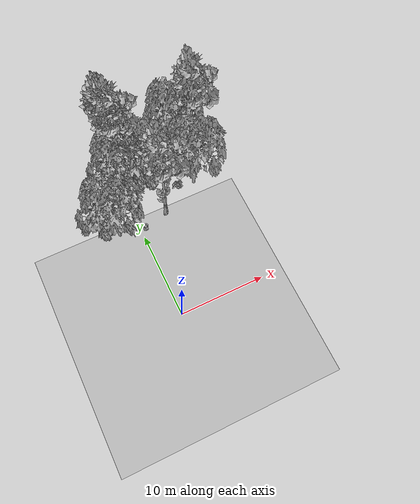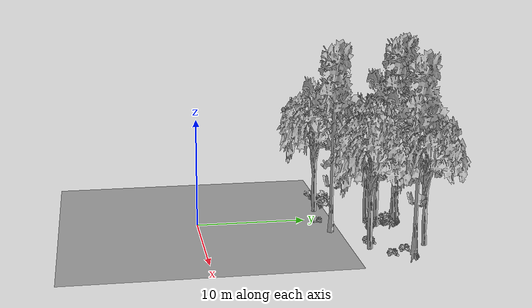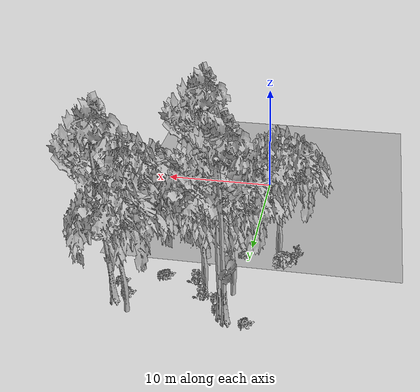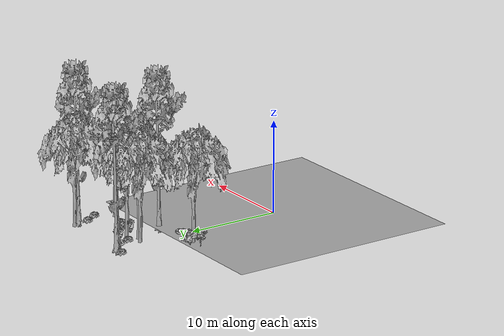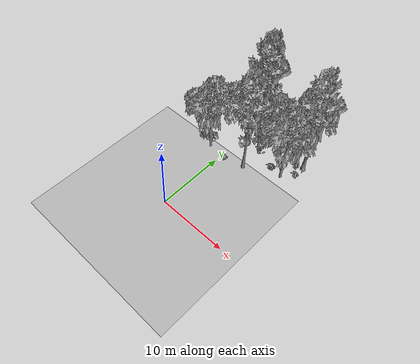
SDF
<sdf version="1.7">
 <world name="default">
  <model name="ground_plane">
   <static>1</static>
   <link name="link">
    <collision name="collision">
     <pose>-50 0 0 0 -0 0</pose>
     <geometry><plane><normal>0 0 1</normal><size>80 80</size></plane></geometry>
     <surface><contact><ode><min_depth>0.01</min_depth><max_vel>0</max_vel></ode></contact></surface>
    </collision>
    <visual name="grass">
     <cast_shadows>0</cast_shadows>
     <geometry>
      <mesh>
       <scale>0.46714285714285714 0.46714285714285714 0.1</scale>
       <uri>file://grass_plane/meshes/grass_plane.dae</uri>
      </mesh>
     </geometry>
    </visual>
   </link>
  </model>
  <model name="Tree 93">
   <static>1</static>
   <pose>1.0366560143027783 18.30291396110657 0 1.57079 -0 0</pose>
   <link name="link">
    <collision name="collision">
     <geometry><mesh><scale>3.5 5 3.5</scale><uri>model://tree_9/meshes/tree_9.obj</uri></mesh></geometry>
    </collision>
    <visual name="visual">
     <geometry><mesh><scale>3.5 5 3.5</scale><uri>model://tree_9/meshes/tree_9.obj</uri></mesh></geometry>
    </visual>
   </link>
  </model>
  <model name="Tree 205">
   <static>1</static>
   <pose>7.994420799059 19.045777521899446 0 1.57079 -0 0</pose>
   <link name="link">
    <collision name="collision">
     <geometry><mesh><scale>3.5 5 3.5</scale><uri>model://tree_2/meshes/tree_2.obj</uri></mesh></geometry>
    </collision>
    <visual name="visual">
     <geometry><mesh><scale>3.5 5 3.5</scale><uri>model://tree_2/meshes/tree_2.obj</uri></mesh></geometry>
    </visual>
   </link>
  </model>
  <model name="Tree 208">
   <static>1</static>
   <pose>0.5889800796362223 18.739921863301497 0 1.57079 -0 0</pose>
   <link name="link">
    <collision name="collision">
     <geometry><mesh><scale>3.5 5 3.5</scale><uri>model://tree_9/meshes/tree_9.obj</uri></mesh></geometry>
    </collision>
    <visual name="visual">
     <geometry><mesh><scale>3.5 5 3.5</scale><uri>model://tree_9/meshes/tree_9.obj</uri></mesh></geometry>
    </visual>
   </link>
  </model>
  <model name="Tree 312">
   <static>1</static>
   <pose>1.358988629509831 15.565167580905523 0 1.57079 -0 0</pose>
   <link name="link">
    <collision name="collision">
     <geometry><mesh><scale>3.5 5 3.5</scale><uri>model://tree_2/meshes/tree_2.obj</uri></mesh></geometry>
    </collision>
    <visual name="visual">
     <geometry><mesh><scale>3.5 5 3.5</scale><uri>model://tree_2/meshes/tree_2.obj</uri></mesh></geometry>
    </visual>
   </link>
  </model>
  <model name="Tree 425">
   <static>1</static>
   <pose>0.4028252142384616 15.95683270745625 0 1.57079 -0 0</pose>
   <link name="link">
    <collision name="collision">
     <geometry><mesh><scale>3.5 5 3.5</scale><uri>model://tree_2/meshes/tree_2.obj</uri></mesh></geometry>
    </collision>
    <visual name="visual">
     <geometry><mesh><scale>3.5 5 3.5</scale><uri>model://tree_2/meshes/tree_2.obj</uri></mesh></geometry>
    </visual>
   </link>
  </model>
  <model name="Tree 459">
   <static>1</static>
   <pose>3.521254608614818 11.793600444369275 0 1.57079 -0 0</pose>
   <link name="link">
    <collision name="collision">
     <geometry><mesh><scale>3.5 5 3.5</scale><uri>model://tree_9/meshes/tree_9.obj</uri></mesh></geometry>
    </collision>
    <visual name="visual">
     <geometry><mesh><scale>3.5 5 3.5</scale><uri>model://tree_9/meshes/tree_9.obj</uri></mesh></geometry>
    </visual>
   </link>
  </model>
  <model name="Tree 484">
   <static>1</static>
   <pose>8.185549274824929 14.11602361968513 0 1.57079 -0 0</pose>
   <link name="link">
    <collision name="collision">
     <geometry><mesh><scale>3.5 5 3.5</scale><uri>model://tree_2/meshes/tree_2.obj</uri></mesh></geometry>
    </collision>
    <visual name="visual">
     <geometry><mesh><scale>3.5 5 3.5</scale><uri>model://tree_2/meshes/tree_2.obj</uri></mesh></geometry>
    </visual>
   </link>
  </model>
  <model name="Tree 548">
   <static>1</static>
   <pose>9.593004643602761 17.713093884860953 0 1.57079 -0 0</pose>
   <link name="link">
    <collision name="collision">
     <geometry><mesh><scale>3.5 5 3.5</scale><uri>model://tree_9/meshes/tree_9.obj</uri></mesh></geometry>
    </collision>
    <visual name="visual">
     <geometry><mesh><scale>3.5 5 3.5</scale><uri>model://tree_9/meshes/tree_9.obj</uri></mesh></geometry>
    </visual>
   </link>
  </model>
  <model name="Tree 608">
   <static>1</static>
   <pose>-2.5415676468551496 11.525831313890109 0 1.57079 -0 0</pose>
   <link name="link">
    <collision name="collision">
     <geometry><mesh><scale>3.5 5 3.5</scale><uri>model://tree_2/meshes/tree_2.obj</uri></mesh></geometry>
    </collision>
    <visual name="visual">
     <geometry><mesh><scale>3.5 5 3.5</scale><uri>model://tree_2/meshes/tree_2.obj</uri></mesh></geometry>
    </visual>
   </link>
  </model>
  <model name="Tree 609">
   <static>1</static>
   <pose>2.563827044589779 16.2126484204055 0 1.57079 -0 0</pose>
   <link name="link">
    <collision name="collision">
     <geometry><mesh><scale>3.5 5 3.5</scale><uri>model://tree_2/meshes/tree_2.obj</uri></mesh></geometry>
    </collision>
    <visual name="visual">
     <geometry><mesh><scale>3.5 5 3.5</scale><uri>model://tree_2/meshes/tree_2.obj</uri></mesh></geometry>
    </visual>
   </link>
  </model>
  <model name="Bush 8">
   <static>1</static>
   <pose>2.642068994613126 17.035596623733156 0 1.57079 -0 0</pose>
   <link name="link">
    <collision name="collision">
     <geometry><mesh><scale>2 2 2</scale><uri>model://bush_4/meshes/bush_4.obj</uri></mesh></geometry>
     <surface><contact><collide_without_contact>false</collide_without_contact></contact></surface>
    </collision>
    <visual name="visual">
     <geometry><mesh><scale>2 2 2</scale><uri>model://bush_4/meshes/bush_4.obj</uri></mesh></geometry>
    </visual>
   </link>
  </model>
  <model name="Bush 14">
   <static>1</static>
   <pose>8.665343355355475 17.09889703442481 0 1.57079 -0 0</pose>
   <link name="link">
    <collision name="collision">
     <geometry><mesh><scale>2 2 2</scale><uri>model://bush_2/meshes/bush_2.obj</uri></mesh></geometry>
     <surface><contact><collide_without_contact>false</collide_without_contact></contact></surface>
    </collision>
    <visual name="visual">
     <geometry><mesh><scale>2 2 2</scale><uri>model://bush_2/meshes/bush_2.obj</uri></mesh></geometry>
    </visual>
   </link>
  </model>
  <model name="Bush 58">
   <static>1</static>
   <pose>6.424458576148737 14.634689962072898 0 1.57079 -0 0</pose>
   <link name="link">
    <collision name="collision">
     <geometry><mesh><scale>2 2 2</scale><uri>model://bush_2/meshes/bush_2.obj</uri></mesh></geometry>
     <surface><contact><collide_without_contact>false</collide_without_contact></contact></surface>
    </collision>
    <visual name="visual">
     <geometry><mesh><scale>2 2 2</scale><uri>model://bush_2/meshes/bush_2.obj</uri></mesh></geometry>
    </visual>
   </link>
  </model>
  <model name="Bush 107">
   <static>1</static>
   <pose>-1.0321781183953007 19.096366690839453 0 1.57079 -0 0</pose>
   <link name="link">
    <collision name="collision">
     <geometry><mesh><scale>2 2 2</scale><uri>model://bush_2/meshes/bush_2.obj</uri></mesh></geometry>
     <surface><contact><collide_without_contact>false</collide_without_contact></contact></surface>
    </collision>
    <visual name="visual">
     <geometry><mesh><scale>2 2 2</scale><uri>model://bush_2/meshes/bush_2.obj</uri></mesh></geometry>
    </visual>
   </link>
  </model>
  <model name="Bush 125">
   <static>1</static>
   <pose>-3.907449670384608 11.662756343627514 0 1.57079 -0 0</pose>
   <link name="link">
    <collision name="collision">
     <geometry><mesh><scale>2 2 2</scale><uri>model://bush_5/meshes/bush_5.obj</uri></mesh></geometry>
     <surface><contact><collide_without_contact>false</collide_without_contact></contact></surface>
    </collision>
    <visual name="visual">
     <geometry><mesh><scale>2 2 2</scale><uri>model://bush_5/meshes/bush_5.obj</uri></mesh></geometry>
    </visual>
   </link>
  </model>
  <model name="Bush 221">
   <static>1</static>
   <pose>3.501549903346536 15.303967404763519 0 1.57079 -0 0</pose>
   <link name="link">
    <collision name="collision">
     <geometry><mesh><scale>2 2 2</scale><uri>model://bush_4/meshes/bush_4.obj</uri></mesh></geometry>
     <surface><contact><collide_without_contact>false</collide_without_contact></contact></surface>
    </collision>
    <visual name="visual">
     <geometry><mesh><scale>2 2 2</scale><uri>model://bush_4/meshes/bush_4.obj</uri></mesh></geometry>
    </visual>
   </link>
  </model>
  <model name="Bush 275">
   <static>1</static>
   <pose>1.5994812843810848 16.66843769672235 0 1.57079 -0 0</pose>
   <link name="link">
    <collision name="collision">
     <geometry><mesh><scale>2 2 2</scale><uri>model://bush_2/meshes/bush_2.obj</uri></mesh></geometry>
     <surface><contact><collide_without_contact>false</collide_without_contact></contact></surface>
    </collision>
    <visual name="visual">
     <geometry><mesh><scale>2 2 2</scale><uri>model://bush_2/meshes/bush_2.obj</uri></mesh></geometry>
    </visual>
   </link>
  </model>
  <model name="Bush 319">
   <static>1</static>
   <pose>1.2450211888143556 17.84893487039607 0 1.57079 -0 0</pose>
   <link name="link">
    <collision name="collision">
     <geometry><mesh><scale>2 2 2</scale><uri>model://bush_2/meshes/bush_2.obj</uri></mesh></geometry>
     <surface><contact><collide_without_contact>false</collide_without_contact></contact></surface>
    </collision>
    <visual name="visual">
     <geometry><mesh><scale>2 2 2</scale><uri>model://bush_2/meshes/bush_2.obj</uri></mesh></geometry>
    </visual>
   </link>
  </model>
  <model name="Bush 395">
   <static>1</static>
   <pose>-2.945836730754195 12.24411614556145 0 1.57079 -0 0</pose>
   <link name="link">
    <collision name="collision">
     <geometry><mesh><scale>2 2 2</scale><uri>model://bush_1/meshes/bush_1.obj</uri></mesh></geometry>
     <surface><contact><collide_without_contact>false</collide_without_contact></contact></surface>
    </collision>
    <visual name="visual">
     <geometry><mesh><scale>2 2 2</scale><uri>model://bush_1/meshes/bush_1.obj</uri></mesh></geometry>
    </visual>
   </link>
  </model>
  <model name="Bush 520">
   <static>1</static>
   <pose>0.4411288563289162 11.211215579356441 0 1.57079 -0 0</pose>
   <link name="link">
    <collision name="collision">
     <geometry><mesh><scale>2 2 2</scale><uri>model://bush_2/meshes/bush_2.obj</uri></mesh></geometry>
     <surface><contact><collide_without_contact>false</collide_without_contact></contact></surface>
    </collision>
    <visual name="visual">
     <geometry><mesh><scale>2 2 2</scale><uri>model://bush_2/meshes/bush_2.obj</uri></mesh></geometry>
    </visual>
   </link>
  </model>
  <model name="Bush 545">
   <static>1</static>
   <pose>9.54223310349645 15.779592210537324 0 1.57079 -0 0</pose>
   <link name="link">
    <collision name="collision">
     <geometry><mesh><scale>2 2 2</scale><uri>model://bush_2/meshes/bush_2.obj</uri></mesh></geometry>
     <surface><contact><collide_without_contact>false</collide_without_contact></contact></surface>
    </collision>
    <visual name="visual">
     <geometry><mesh><scale>2 2 2</scale><uri>model://bush_2/meshes/bush_2.obj</uri></mesh></geometry>
    </visual>
   </link>
  </model>
  <model name="Bush 574">
   <static>1</static>
   <pose>6.179366384436079 14.509193709756744 0 1.57079 -0 0</pose>
   <link name="link">
    <collision name="collision">
     <geometry><mesh><scale>2 2 2</scale><uri>model://bush_2/meshes/bush_2.obj</uri></mesh></geometry>
     <surface><contact><collide_without_contact>false</collide_without_contact></contact></surface>
    </collision>
    <visual name="visual">
     <geometry><mesh><scale>2 2 2</scale><uri>model://bush_2/meshes/bush_2.obj</uri></mesh></geometry>
    </visual>
   </link>
  </model>
 </world>
</sdf>
